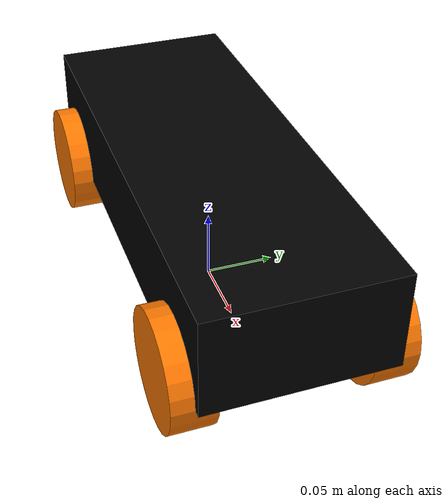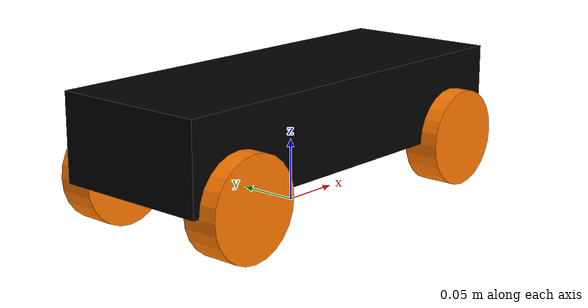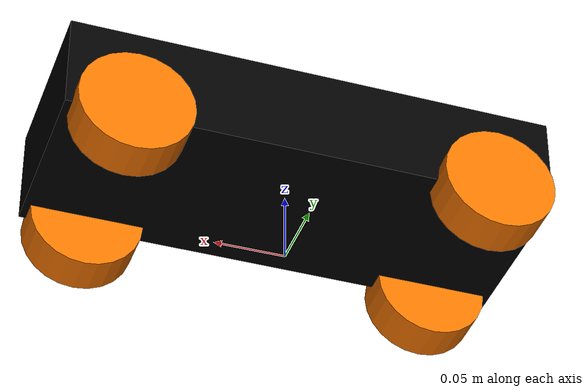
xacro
<?xml version="1.0"?>
<robot xmlns:xacro="http://www.ros.org/wiki/xacro"  name="arcus">

  <xacro:include filename="robot_core.xacro" />
  <xacro:include filename="gz_ros2_control.xacro" />
  <xacro:include filename="hw_ros2_control.xacro"/>

  <xacro:arg name="use_sim" default="true"/>

  <xacro:arcus prefix="arcus_" />

  <xacro:if value="$(arg use_sim)">
    <xacro:gz_ros2_control prefix="arcus_" />
  </xacro:if>

  <xacro:unless value="$(arg use_sim)">
    <xacro:vesc_ros2_control prefix="arcus_" />
  </xacro:unless>

</robot>

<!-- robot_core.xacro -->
<robot xmlns:xacro="http://www.ros.org/wiki/xacro">
  <xacro:macro name="arcus" params="prefix">

  <!-- Constants -->
  <xacro:property name="PI" value="3.1415926535897931"/>
  <xacro:property name="base_mass" value="4.0" />
  <xacro:property name="base_width" value="0.13" />
  <xacro:property name="base_length" value="0.345" />
  <xacro:property name="base_height" value="0.070" />
  <xacro:property name="wheelbase" value="0.255" />
  <xacro:property name="wheel_mass" value="0.34055" />
  <xacro:property name="wheel_len" value="0.03" />
  <xacro:property name="wheel_radius" value="0.04" />

  <material name="black">
    <color rgba="0 0 0 1"/>
  </material>

  <material name="orange">
    <color rgba="1 0.47 0 1"/>
  </material>

  <!-- Base and chassis -->
  <link name="${prefix}base_link" />

  <link name="${prefix}chassis_link">
    <visual>
      <origin xyz="0 0 0" rpy="0 0 0"/>
      <geometry>
        <box size="${base_length} ${base_width} ${base_height}"/>
      </geometry>
      <material name="black"/>
    </visual>

    <collision>
      <origin xyz="0 0 0" rpy="0 0 0"/>
      <geometry>
        <box size="${base_length} ${base_width} ${base_height}"/>
      </geometry>
    </collision>

    <inertial>
      <origin xyz="0 0 0" rpy="0 0 0"/>
      <mass value="${base_mass}"/>
        <inertia
          ixx="0.000270" ixy="0.0" ixz="0.0"
          iyy="0.000270" iyz="0.0"
          izz="0.000426"/>
      </inertial>
  </link>

  <joint name="${prefix}chassis_joint" type="fixed">
    <parent link="${prefix}base_link"/>
    <child link="${prefix}chassis_link"/>
    <origin xyz="0 0 ${base_height/2 + wheel_radius}" rpy="0 0 0"/>
    <dynamics damping="0.2"/>
  </joint>

  <!-- Rear Left Wheel (Driven) -->
  <link name="${prefix}rear_left_wheel">
    <collision>
      <origin xyz="0 0 0" rpy="${PI/2} 0 ${PI/2}"/>
      <geometry>
        <cylinder length="${wheel_len}" radius="${wheel_radius}"/>
      </geometry>
    </collision>

    <visual>
      <origin xyz="0 0 0" rpy="${PI/2} 0 ${PI/2}"/>
      <geometry>
        <cylinder length="${wheel_len}" radius="${wheel_radius}"/>
      </geometry>
      <material name="orange"/>
    </visual>

    <inertial>
      <origin xyz="0 0 0" rpy="${PI/2} 0 ${PI/2}"/>
      <mass value="${wheel_mass}"/>
      <inertia
        ixx="0.000270" ixy="0.0" ixz="0.0"
        iyy="0.000270" iyz="0.0"
        izz="0.000426"/>
    </inertial>
  </link>

  <joint name="${prefix}rear_left_wheel_joint" type="continuous">
    <parent link="${prefix}chassis_link"/>
    <child link="${prefix}rear_left_wheel"/>
    <origin xyz="-${wheelbase/2} -${base_width/2} -${base_height/2}" rpy="0 0 ${PI/2}"/>
    <axis xyz="1 0 0"/>
  </joint>

  <!-- Rear Right Wheel -->
  <link name="${prefix}rear_right_wheel">
    <collision>
        <origin xyz="0 0 0" rpy="${PI/2} 0 ${PI/2}"/>
        <geometry>
          <cylinder length="${wheel_len}" radius="${wheel_radius}"/>
        </geometry>
      </collision>

      <visual>
        <origin xyz="0 0 0" rpy="${PI/2} 0 ${PI/2}"/>
        <geometry>
          <cylinder length="${wheel_len}" radius="${wheel_radius}"/>
        </geometry>
        <material name="orange"/>
      </visual>

      <inertial>
        <origin xyz="0 0 0" rpy="${PI/2} 0 ${PI/2}"/>
        <mass value="${wheel_mass}"/>
        <inertia
          ixx="0.000270" ixy="0.0" ixz="0.0"
          iyy="0.000270" iyz="0.0"
          izz="0.000426"/>
      </inertial>
  </link>

  <joint name="${prefix}rear_right_wheel_joint" type="continuous">
    <parent link="${prefix}chassis_link"/>
    <child link="${prefix}rear_right_wheel"/>
    <origin xyz="-${wheelbase/2} ${base_width/2} -${base_height/2}" rpy="0 0 ${PI/2}"/>
    <axis xyz="1 0 0"/>
  </joint>

  <!-- Front Left Steering Link -->
  <link name="${prefix}front_left_steering_link">
    <inertial>
      <origin xyz="0 0 0" rpy="0 0 0"/>
      <mass value="0.01"/> <!-- Small mass for steering link -->
      <inertia
        ixx="1e-5" ixy="0.0" ixz="0.0"
        iyy="1e-5" iyz="0.0"
        izz="1e-5"/>
    </inertial>
  </link>
  <joint name="${prefix}front_left_steering_joint" type="revolute">
    <parent link="${prefix}chassis_link"/>
    <child link="${prefix}front_left_steering_link"/>
    <origin xyz="${wheelbase/2} -${base_width/2} -${base_height/2}" rpy="0 0 0"/>
    <axis xyz="0 0 1"/>
    <limit lower="-0.5" upper="0.5" effort="10" velocity="1.0"/>
  </joint>

  <!-- Front Left Wheel -->
  <link name="${prefix}front_left_wheel">
    <collision>
      <origin xyz="0 0 0" rpy="${PI/2} 0 ${PI/2}"/>
      <geometry>
        <cylinder length="${wheel_len}" radius="${wheel_radius}"/>
      </geometry>
    </collision>

    <visual>
      <origin xyz="0 0 0" rpy="${PI/2} 0 ${PI/2}"/>
      <geometry>
        <cylinder length="${wheel_len}" radius="${wheel_radius}"/>
      </geometry>
      <material name="orange"/>
    </visual>

    <inertial>
      <origin xyz="0 0 0" rpy="${PI/2} 0 ${PI/2}"/>
      <mass value="${wheel_mass}"/>
      <inertia
        ixx="0.000270" ixy="0.0" ixz="0.0"
        iyy="0.000270" iyz="0.0"
        izz="0.000426"/>
    </inertial>
  </link>
  <joint name="${prefix}front_left_wheel_joint" type="continuous">
    <parent link="${prefix}front_left_steering_link"/>
    <child link="${prefix}front_left_wheel"/>
    <origin xyz="0 0 0" rpy="0 0 ${PI/2}"/>
    <axis xyz="1 0 0"/>
  </joint>

  <!-- Front Right Steering Link -->
  <link name="${prefix}front_right_steering_link">
    <inertial>
      <origin xyz="0 0 0" rpy="0 0 0"/>
      <mass value="0.01"/> <!-- Small mass for steering link -->
      <inertia
        ixx="1e-5" ixy="0.0" ixz="0.0"
        iyy="1e-5" iyz="0.0"
        izz="1e-5"/>
    </inertial>
  </link>
  <joint name="${prefix}front_right_steering_joint" type="revolute">
    <parent link="${prefix}chassis_link"/>
    <child link="${prefix}front_right_steering_link"/>
    <origin xyz="${wheelbase/2} ${base_width/2} -${base_height/2}" rpy="0 0 0"/>
    <axis xyz="0 0 1"/>
    <limit lower="-0.5" upper="0.5" effort="10" velocity="1.0"/>
  </joint>

  <!-- Front Right Wheel -->
  <link name="${prefix}front_right_wheel">
    <collision>
      <origin xyz="0 0 0" rpy="${PI/2} 0 ${PI/2}"/>
      <geometry>
        <cylinder length="${wheel_len}" radius="${wheel_radius}"/>
      </geometry>
    </collision>

    <visual>
      <origin xyz="0 0 0" rpy="${PI/2} 0 ${PI/2}"/>
      <geometry>
        <cylinder length="${wheel_len}" radius="${wheel_radius}"/>
      </geometry>
      <material name="orange"/>
    </visual>

    <inertial>
      <origin xyz="0 0 0" rpy="${PI/2} 0 ${PI/2}"/>
      <mass value="${wheel_mass}"/>
      <inertia
        ixx="0.000270" ixy="0.0" ixz="0.0"
        iyy="0.000270" iyz="0.0"
        izz="0.000426"/>
    </inertial>
  </link>

  <joint name="${prefix}front_right_wheel_joint" type="continuous">
    <parent link="${prefix}front_right_steering_link"/>
    <child link="${prefix}front_right_wheel"/>
    <origin xyz="0 0 0" rpy="0 0 ${PI/2}"/>
    <axis xyz="1 0 0"/>
  </joint>

  </xacro:macro>
</robot>
